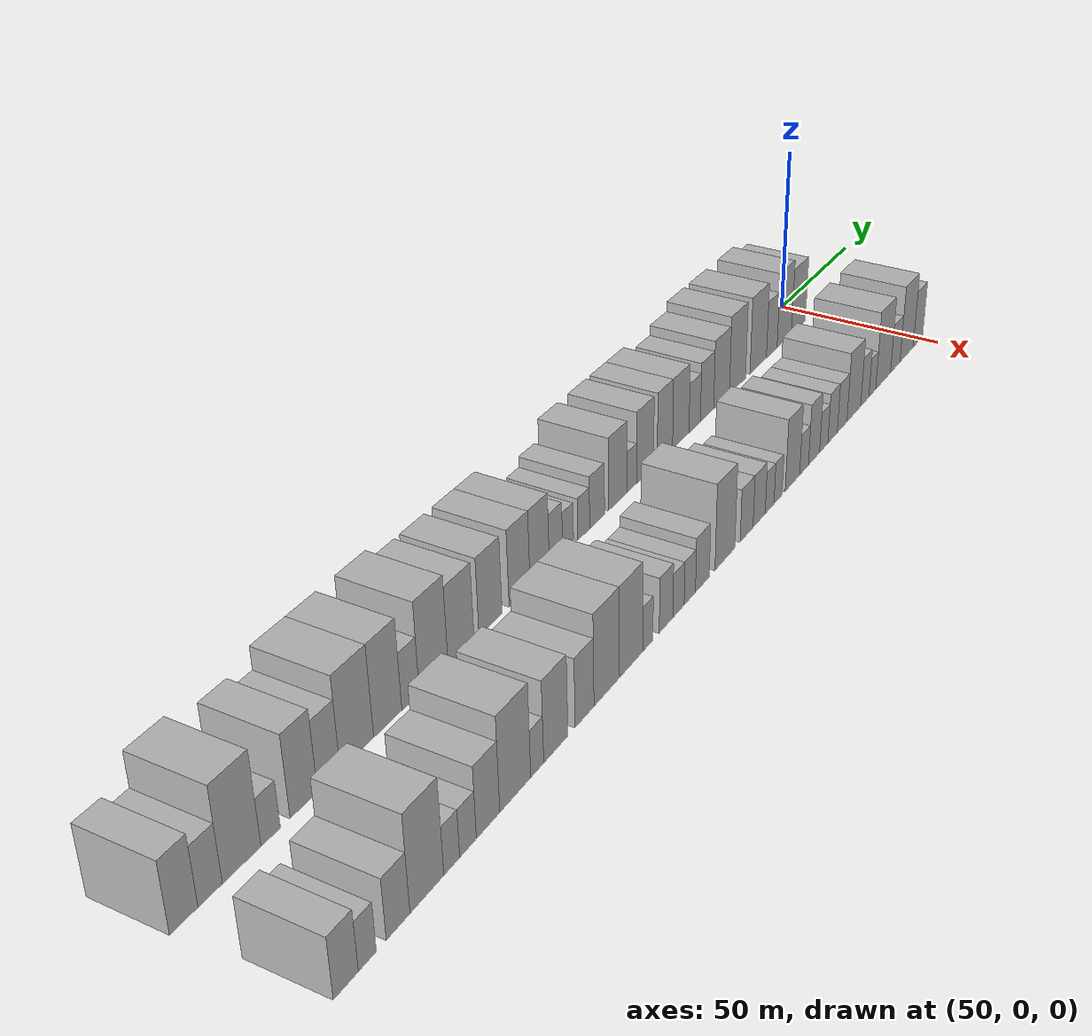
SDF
<sdf version="1.6">
 <world name="default">
  <model name="building_1">
   <static>1</static>
   <pose>50.0000 -286.1215 0 0.000000 0.000000 0.000000</pose>
   <link name="link">
    <pose>0 0 9.00 0 0 0</pose>
    <collision name="collision"><geometry><box><size>20.0000 7.7570 18.0000</size></box></geometry></collision>
    <visual name="visual">
     <cast_shadows>0</cast_shadows>
     <geometry><box><size>20.0000 7.7570 18.0000</size></box></geometry>
     <material>
      <script>
       <uri>model://HANNAS_wall/materials/scripts</uri>
       <uri>model://HANNAS_wall/materials/textures</uri>
       <name>vrc/HANNAS_wall</name>
      </script>
     </material>
    </visual>
   </link>
  </model>
  <model name="building_2">
   <static>1</static>
   <pose>50.0000 -278.8270 0 0.000000 0.000000 0.000000</pose>
   <link name="link">
    <pose>0 0 7.50 0 0 0</pose>
    <collision name="collision"><geometry><box><size>20.0000 6.8320 15.0000</size></box></geometry></collision>
    <visual name="visual">
     <cast_shadows>0</cast_shadows>
     <geometry><box><size>20.0000 6.8320 15.0000</size></box></geometry>
     <material>
      <script>
       <uri>model://HANNAS_wall/materials/scripts</uri>
       <uri>model://HANNAS_wall/materials/textures</uri>
       <name>vrc/HANNAS_wall</name>
      </script>
     </material>
    </visual>
   </link>
  </model>
  <model name="building_3">
   <static>1</static>
   <pose>50.0000 -269.7757 0 0.000000 0.000000 0.000000</pose>
   <link name="link">
    <pose>0 0 12.00 0 0 0</pose>
    <collision name="collision"><geometry><box><size>20.0000 11.2707 24.0000</size></box></geometry></collision>
    <visual name="visual">
     <cast_shadows>0</cast_shadows>
     <geometry><box><size>20.0000 11.2707 24.0000</size></box></geometry>
     <material>
      <script>
       <uri>model://HANNAS_wall/materials/scripts</uri>
       <uri>model://HANNAS_wall/materials/textures</uri>
       <name>vrc/HANNAS_wall</name>
      </script>
     </material>
    </visual>
   </link>
  </model>
  <model name="building_4">
   <static>1</static>
   <pose>50.0000 -261.1893 0 0.000000 0.000000 0.000000</pose>
   <link name="link">
    <pose>0 0 6.00 0 0 0</pose>
    <collision name="collision"><geometry><box><size>20.0000 5.9021 12.0000</size></box></geometry></collision>
    <visual name="visual">
     <cast_shadows>0</cast_shadows>
     <geometry><box><size>20.0000 5.9021 12.0000</size></box></geometry>
     <material>
      <script>
       <uri>model://HANNAS_wall/materials/scripts</uri>
       <uri>model://HANNAS_wall/materials/textures</uri>
       <name>vrc/HANNAS_wall</name>
      </script>
     </material>
    </visual>
   </link>
  </model>
  <model name="building_5">
   <static>1</static>
   <pose>50.0000 -250.8855 0 0.000000 0.000000 0.000000</pose>
   <link name="link">
    <pose>0 0 10.50 0 0 0</pose>
    <collision name="collision"><geometry><box><size>20.0000 8.7054 21.0000</size></box></geometry></collision>
    <visual name="visual">
     <cast_shadows>0</cast_shadows>
     <geometry><box><size>20.0000 8.7054 21.0000</size></box></geometry>
     <material>
      <script>
       <uri>model://HANNAS_wall/materials/scripts</uri>
       <uri>model://HANNAS_wall/materials/textures</uri>
       <name>vrc/HANNAS_wall</name>
      </script>
     </material>
    </visual>
   </link>
  </model>
  <model name="building_6">
   <static>1</static>
   <pose>50.0000 -242.7980 0 0.000000 0.000000 0.000000</pose>
   <link name="link">
    <pose>0 0 9.00 0 0 0</pose>
    <collision name="collision"><geometry><box><size>20.0000 7.4695 18.0000</size></box></geometry></collision>
    <visual name="visual">
     <cast_shadows>0</cast_shadows>
     <geometry><box><size>20.0000 7.4695 18.0000</size></box></geometry>
     <material>
      <script>
       <uri>model://HANNAS_wall/materials/scripts</uri>
       <uri>model://HANNAS_wall/materials/textures</uri>
       <name>vrc/HANNAS_wall</name>
      </script>
     </material>
    </visual>
   </link>
  </model>
  <model name="building_7">
   <static>1</static>
   <pose>50.0000 -233.3170 0 0.000000 0.000000 0.000000</pose>
   <link name="link">
    <pose>0 0 12.00 0 0 0</pose>
    <collision name="collision"><geometry><box><size>20.0000 11.4925 24.0000</size></box></geometry></collision>
    <visual name="visual">
     <cast_shadows>0</cast_shadows>
     <geometry><box><size>20.0000 11.4925 24.0000</size></box></geometry>
     <material>
      <script>
       <uri>model://HANNAS_wall/materials/scripts</uri>
       <uri>model://HANNAS_wall/materials/textures</uri>
       <name>vrc/HANNAS_wall</name>
      </script>
     </material>
    </visual>
   </link>
  </model>
  <model name="building_8">
   <static>1</static>
   <pose>50.0000 -222.5030 0 0.000000 0.000000 0.000000</pose>
   <link name="link">
    <pose>0 0 12.00 0 0 0</pose>
    <collision name="collision"><geometry><box><size>20.0000 10.1356 24.0000</size></box></geometry></collision>
    <visual name="visual">
     <cast_shadows>0</cast_shadows>
     <geometry><box><size>20.0000 10.1356 24.0000</size></box></geometry>
     <material>
      <script>
       <uri>model://HANNAS_wall/materials/scripts</uri>
       <uri>model://HANNAS_wall/materials/textures</uri>
       <name>vrc/HANNAS_wall</name>
      </script>
     </material>
    </visual>
   </link>
  </model>
  <model name="building_9">
   <static>1</static>
   <pose>50.0000 -214.2020 0 0.000000 0.000000 0.000000</pose>
   <link name="link">
    <pose>0 0 7.50 0 0 0</pose>
    <collision name="collision"><geometry><box><size>20.0000 6.4662 15.0000</size></box></geometry></collision>
    <visual name="visual">
     <cast_shadows>0</cast_shadows>
     <geometry><box><size>20.0000 6.4662 15.0000</size></box></geometry>
     <material>
      <script>
       <uri>model://HANNAS_wall/materials/scripts</uri>
       <uri>model://HANNAS_wall/materials/textures</uri>
       <name>vrc/HANNAS_wall</name>
      </script>
     </material>
    </visual>
   </link>
  </model>
  <model name="building_10">
   <static>1</static>
   <pose>50.0000 -205.4233 0 0.000000 0.000000 0.000000</pose>
   <link name="link">
    <pose>0 0 12.00 0 0 0</pose>
    <collision name="collision"><geometry><box><size>20.0000 11.0913 24.0000</size></box></geometry></collision>
    <visual name="visual">
     <cast_shadows>0</cast_shadows>
     <geometry><box><size>20.0000 11.0913 24.0000</size></box></geometry>
     <material>
      <script>
       <uri>model://HANNAS_wall/materials/scripts</uri>
       <uri>model://HANNAS_wall/materials/textures</uri>
       <name>vrc/HANNAS_wall</name>
      </script>
     </material>
    </visual>
   </link>
  </model>
  <model name="building_11">
   <static>1</static>
   <pose>50.0000 -194.6759 0 0.000000 0.000000 0.000000</pose>
   <link name="link">
    <pose>0 0 10.50 0 0 0</pose>
    <collision name="collision"><geometry><box><size>20.0000 10.4035 21.0000</size></box></geometry></collision>
    <visual name="visual">
     <cast_shadows>0</cast_shadows>
     <geometry><box><size>20.0000 10.4035 21.0000</size></box></geometry>
     <material>
      <script>
       <uri>model://HANNAS_wall/materials/scripts</uri>
       <uri>model://HANNAS_wall/materials/textures</uri>
       <name>vrc/HANNAS_wall</name>
      </script>
     </material>
    </visual>
   </link>
  </model>
  <model name="building_12">
   <static>1</static>
   <pose>50.0000 -182.6092 0 0.000000 0.000000 0.000000</pose>
   <link name="link">
    <pose>0 0 10.50 0 0 0</pose>
    <collision name="collision"><geometry><box><size>20.0000 9.7299 21.0000</size></box></geometry></collision>
    <visual name="visual">
     <cast_shadows>0</cast_shadows>
     <geometry><box><size>20.0000 9.7299 21.0000</size></box></geometry>
     <material>
      <script>
       <uri>model://HANNAS_wall/materials/scripts</uri>
       <uri>model://HANNAS_wall/materials/textures</uri>
       <name>vrc/HANNAS_wall</name>
      </script>
     </material>
    </visual>
   </link>
  </model>
  <model name="building_13">
   <static>1</static>
   <pose>50.0000 -170.1240 0 0.000000 0.000000 0.000000</pose>
   <link name="link">
    <pose>0 0 10.50 0 0 0</pose>
    <collision name="collision"><geometry><box><size>20.0000 9.2405 21.0000</size></box></geometry></collision>
    <visual name="visual">
     <cast_shadows>0</cast_shadows>
     <geometry><box><size>20.0000 9.2405 21.0000</size></box></geometry>
     <material>
      <script>
       <uri>model://HANNAS_wall/materials/scripts</uri>
       <uri>model://HANNAS_wall/materials/textures</uri>
       <name>vrc/HANNAS_wall</name>
      </script>
     </material>
    </visual>
   </link>
  </model>
  <model name="building_14">
   <static>1</static>
   <pose>50.0000 -161.1200 0 0.000000 0.000000 0.000000</pose>
   <link name="link">
    <pose>0 0 10.50 0 0 0</pose>
    <collision name="collision"><geometry><box><size>20.0000 8.7677 21.0000</size></box></geometry></collision>
    <visual name="visual">
     <cast_shadows>0</cast_shadows>
     <geometry><box><size>20.0000 8.7677 21.0000</size></box></geometry>
     <material>
      <script>
       <uri>model://HANNAS_wall/materials/scripts</uri>
       <uri>model://HANNAS_wall/materials/textures</uri>
       <name>vrc/HANNAS_wall</name>
      </script>
     </material>
    </visual>
   </link>
  </model>
  <model name="building_15">
   <static>1</static>
   <pose>50.0000 -153.6096 0 0.000000 0.000000 0.000000</pose>
   <link name="link">
    <pose>0 0 7.50 0 0 0</pose>
    <collision name="collision"><geometry><box><size>20.0000 6.2531 15.0000</size></box></geometry></collision>
    <visual name="visual">
     <cast_shadows>0</cast_shadows>
     <geometry><box><size>20.0000 6.2531 15.0000</size></box></geometry>
     <material>
      <script>
       <uri>model://HANNAS_wall/materials/scripts</uri>
       <uri>model://HANNAS_wall/materials/textures</uri>
       <name>vrc/HANNAS_wall</name>
      </script>
     </material>
    </visual>
   </link>
  </model>
  <model name="building_16">
   <static>1</static>
   <pose>50.0000 -147.8649 0 0.000000 0.000000 0.000000</pose>
   <link name="link">
    <pose>0 0 6.00 0 0 0</pose>
    <collision name="collision"><geometry><box><size>20.0000 5.2362 12.0000</size></box></geometry></collision>
    <visual name="visual">
     <cast_shadows>0</cast_shadows>
     <geometry><box><size>20.0000 5.2362 12.0000</size></box></geometry>
     <material>
      <script>
       <uri>model://HANNAS_wall/materials/scripts</uri>
       <uri>model://HANNAS_wall/materials/textures</uri>
       <name>vrc/HANNAS_wall</name>
      </script>
     </material>
    </visual>
   </link>
  </model>
  <model name="building_17">
   <static>1</static>
   <pose>50.0000 -140.3186 0 0.000000 0.000000 0.000000</pose>
   <link name="link">
    <pose>0 0 6.00 0 0 0</pose>
    <collision name="collision"><geometry><box><size>20.0000 5.8565 12.0000</size></box></geometry></collision>
    <visual name="visual">
     <cast_shadows>0</cast_shadows>
     <geometry><box><size>20.0000 5.8565 12.0000</size></box></geometry>
     <material>
      <script>
       <uri>model://HANNAS_wall/materials/scripts</uri>
       <uri>model://HANNAS_wall/materials/textures</uri>
       <name>vrc/HANNAS_wall</name>
      </script>
     </material>
    </visual>
   </link>
  </model>
  <model name="building_18">
   <static>1</static>
   <pose>50.0000 -133.6566 0 0.000000 0.000000 0.000000</pose>
   <link name="link">
    <pose>0 0 7.50 0 0 0</pose>
    <collision name="collision"><geometry><box><size>20.0000 7.4675 15.0000</size></box></geometry></collision>
    <visual name="visual">
     <cast_shadows>0</cast_shadows>
     <geometry><box><size>20.0000 7.4675 15.0000</size></box></geometry>
     <material>
      <script>
       <uri>model://HANNAS_wall/materials/scripts</uri>
       <uri>model://HANNAS_wall/materials/textures</uri>
       <name>vrc/HANNAS_wall</name>
      </script>
     </material>
    </visual>
   </link>
  </model>
  <model name="building_19">
   <static>1</static>
   <pose>50.0000 -123.0752 0 0.000000 0.000000 0.000000</pose>
   <link name="link">
    <pose>0 0 10.50 0 0 0</pose>
    <collision name="collision"><geometry><box><size>20.0000 9.6954 21.0000</size></box></geometry></collision>
    <visual name="visual">
     <cast_shadows>0</cast_shadows>
     <geometry><box><size>20.0000 9.6954 21.0000</size></box></geometry>
     <material>
      <script>
       <uri>model://HANNAS_wall/materials/scripts</uri>
       <uri>model://HANNAS_wall/materials/textures</uri>
       <name>vrc/HANNAS_wall</name>
      </script>
     </material>
    </visual>
   </link>
  </model>
  <model name="building_20">
   <static>1</static>
   <pose>50.0000 -115.6815 0 0.000000 0.000000 0.000000</pose>
   <link name="link">
    <pose>0 0 6.00 0 0 0</pose>
    <collision name="collision"><geometry><box><size>20.0000 5.0921 12.0000</size></box></geometry></collision>
    <visual name="visual">
     <cast_shadows>0</cast_shadows>
     <geometry><box><size>20.0000 5.0921 12.0000</size></box></geometry>
     <material>
      <script>
       <uri>model://HANNAS_wall/materials/scripts</uri>
       <uri>model://HANNAS_wall/materials/textures</uri>
       <name>vrc/HANNAS_wall</name>
      </script>
     </material>
    </visual>
   </link>
  </model>
  <model name="building_21">
   <static>1</static>
   <pose>50.0000 -108.4756 0 0.000000 0.000000 0.000000</pose>
   <link name="link">
    <pose>0 0 10.50 0 0 0</pose>
    <collision name="collision"><geometry><box><size>20.0000 9.3197 21.0000</size></box></geometry></collision>
    <visual name="visual">
     <cast_shadows>0</cast_shadows>
     <geometry><box><size>20.0000 9.3197 21.0000</size></box></geometry>
     <material>
      <script>
       <uri>model://HANNAS_wall/materials/scripts</uri>
       <uri>model://HANNAS_wall/materials/textures</uri>
       <name>vrc/HANNAS_wall</name>
      </script>
     </material>
    </visual>
   </link>
  </model>
  <model name="building_22">
   <static>1</static>
   <pose>50.0000 -97.4793 0 0.000000 0.000000 0.000000</pose>
   <link name="link">
    <pose>0 0 10.50 0 0 0</pose>
    <collision name="collision"><geometry><box><size>20.0000 8.6728 21.0000</size></box></geometry></collision>
    <visual name="visual">
     <cast_shadows>0</cast_shadows>
     <geometry><box><size>20.0000 8.6728 21.0000</size></box></geometry>
     <material>
      <script>
       <uri>model://HANNAS_wall/materials/scripts</uri>
       <uri>model://HANNAS_wall/materials/textures</uri>
       <name>vrc/HANNAS_wall</name>
      </script>
     </material>
    </visual>
   </link>
  </model>
  <model name="building_23">
   <static>1</static>
   <pose>50.0000 -88.3276 0 0.000000 0.000000 0.000000</pose>
   <link name="link">
    <pose>0 0 10.50 0 0 0</pose>
    <collision name="collision"><geometry><box><size>20.0000 9.6306 21.0000</size></box></geometry></collision>
    <visual name="visual">
     <cast_shadows>0</cast_shadows>
     <geometry><box><size>20.0000 9.6306 21.0000</size></box></geometry>
     <material>
      <script>
       <uri>model://HANNAS_wall/materials/scripts</uri>
       <uri>model://HANNAS_wall/materials/textures</uri>
       <name>vrc/HANNAS_wall</name>
      </script>
     </material>
    </visual>
   </link>
  </model>
  <model name="building_24">
   <static>1</static>
   <pose>50.0000 -80.1042 0 0.000000 0.000000 0.000000</pose>
   <link name="link">
    <pose>0 0 7.50 0 0 0</pose>
    <collision name="collision"><geometry><box><size>20.0000 6.8162 15.0000</size></box></geometry></collision>
    <visual name="visual">
     <cast_shadows>0</cast_shadows>
     <geometry><box><size>20.0000 6.8162 15.0000</size></box></geometry>
     <material>
      <script>
       <uri>model://HANNAS_wall/materials/scripts</uri>
       <uri>model://HANNAS_wall/materials/textures</uri>
       <name>vrc/HANNAS_wall</name>
      </script>
     </material>
    </visual>
   </link>
  </model>
  <model name="building_25">
   <static>1</static>
   <pose>50.0000 -72.6265 0 0.000000 0.000000 0.000000</pose>
   <link name="link">
    <pose>0 0 9.00 0 0 0</pose>
    <collision name="collision"><geometry><box><size>20.0000 8.1390 18.0000</size></box></geometry></collision>
    <visual name="visual">
     <cast_shadows>0</cast_shadows>
     <geometry><box><size>20.0000 8.1390 18.0000</size></box></geometry>
     <material>
      <script>
       <uri>model://HANNAS_wall/materials/scripts</uri>
       <uri>model://HANNAS_wall/materials/textures</uri>
       <name>vrc/HANNAS_wall</name>
      </script>
     </material>
    </visual>
   </link>
  </model>
  <model name="building_26">
   <static>1</static>
   <pose>50.0000 -63.5773 0 0.000000 0.000000 0.000000</pose>
   <link name="link">
    <pose>0 0 10.50 0 0 0</pose>
    <collision name="collision"><geometry><box><size>20.0000 9.9593 21.0000</size></box></geometry></collision>
    <visual name="visual">
     <cast_shadows>0</cast_shadows>
     <geometry><box><size>20.0000 9.9593 21.0000</size></box></geometry>
     <material>
      <script>
       <uri>model://HANNAS_wall/materials/scripts</uri>
       <uri>model://HANNAS_wall/materials/textures</uri>
       <name>vrc/HANNAS_wall</name>
      </script>
     </material>
    </visual>
   </link>
  </model>
  <model name="building_27">
   <static>1</static>
   <pose>50.0000 -53.3399 0 0.000000 0.000000 0.000000</pose>
   <link name="link">
    <pose>0 0 12.00 0 0 0</pose>
    <collision name="collision"><geometry><box><size>20.0000 10.5155 24.0000</size></box></geometry></collision>
    <visual name="visual">
     <cast_shadows>0</cast_shadows>
     <geometry><box><size>20.0000 10.5155 24.0000</size></box></geometry>
     <material>
      <script>
       <uri>model://HANNAS_wall/materials/scripts</uri>
       <uri>model://HANNAS_wall/materials/textures</uri>
       <name>vrc/HANNAS_wall</name>
      </script>
     </material>
    </visual>
   </link>
  </model>
  <model name="building_28">
   <static>1</static>
   <pose>50.0000 -39.4996 0 0.000000 0.000000 0.000000</pose>
   <link name="link">
    <pose>0 0 12.00 0 0 0</pose>
    <collision name="collision"><geometry><box><size>20.0000 11.1651 24.0000</size></box></geometry></collision>
    <visual name="visual">
     <cast_shadows>0</cast_shadows>
     <geometry><box><size>20.0000 11.1651 24.0000</size></box></geometry>
     <material>
      <script>
       <uri>model://HANNAS_wall/materials/scripts</uri>
       <uri>model://HANNAS_wall/materials/textures</uri>
       <name>vrc/HANNAS_wall</name>
      </script>
     </material>
    </visual>
   </link>
  </model>
  <model name="building_29">
   <static>1</static>
   <pose>50.0000 -30.1853 0 0.000000 0.000000 0.000000</pose>
   <link name="link">
    <pose>0 0 9.00 0 0 0</pose>
    <collision name="collision"><geometry><box><size>20.0000 7.4636 18.0000</size></box></geometry></collision>
    <visual name="visual">
     <cast_shadows>0</cast_shadows>
     <geometry><box><size>20.0000 7.4636 18.0000</size></box></geometry>
     <material>
      <script>
       <uri>model://HANNAS_wall/materials/scripts</uri>
       <uri>model://HANNAS_wall/materials/textures</uri>
       <name>vrc/HANNAS_wall</name>
      </script>
     </material>
    </visual>
   </link>
  </model>
  <model name="building_30">
   <static>1</static>
   <pose>50.0000 -21.2771 0 0.000000 0.000000 0.000000</pose>
   <link name="link">
    <pose>0 0 12.00 0 0 0</pose>
    <collision name="collision"><geometry><box><size>20.0000 10.3528 24.0000</size></box></geometry></collision>
    <visual name="visual">
     <cast_shadows>0</cast_shadows>
     <geometry><box><size>20.0000 10.3528 24.0000</size></box></geometry>
     <material>
      <script>
       <uri>model://HANNAS_wall/materials/scripts</uri>
       <uri>model://HANNAS_wall/materials/textures</uri>
       <name>vrc/HANNAS_wall</name>
      </script>
     </material>
    </visual>
   </link>
  </model>
  <model name="building_31">
   <static>1</static>
   <pose>50.0000 -10.9380 0 0.000000 0.000000 0.000000</pose>
   <link name="link">
    <pose>0 0 10.50 0 0 0</pose>
    <collision name="collision"><geometry><box><size>20.0000 10.3253 21.0000</size></box></geometry></collision>
    <visual name="visual">
     <cast_shadows>0</cast_shadows>
     <geometry><box><size>20.0000 10.3253 21.0000</size></box></geometry>
     <material>
      <script>
       <uri>model://HANNAS_wall/materials/scripts</uri>
       <uri>model://HANNAS_wall/materials/textures</uri>
       <name>vrc/HANNAS_wall</name>
      </script>
     </material>
    </visual>
   </link>
  </model>
  <model name="building_66">
   <static>1</static>
   <pose>85.0000 -284.3503 0 0.000000 0.000000 0.000000</pose>
   <link name="link">
    <pose>0 0 7.50 0 0 0</pose>
    <collision name="collision"><geometry><box><size>20.0000 7.2995 15.0000</size></box></geometry></collision>
    <visual name="visual">
     <cast_shadows>0</cast_shadows>
     <geometry><box><size>20.0000 7.2995 15.0000</size></box></geometry>
     <material>
      <script>
       <uri>model://HANNAS_wall/materials/scripts</uri>
       <uri>model://HANNAS_wall/materials/textures</uri>
       <name>vrc/HANNAS_wall</name>
      </script>
     </material>
    </visual>
   </link>
  </model>
  <model name="building_67">
   <static>1</static>
   <pose>85.0000 -278.0085 0 0.000000 0.000000 0.000000</pose>
   <link name="link">
    <pose>0 0 6.00 0 0 0</pose>
    <collision name="collision"><geometry><box><size>20.0000 5.3840 12.0000</size></box></geometry></collision>
    <visual name="visual">
     <cast_shadows>0</cast_shadows>
     <geometry><box><size>20.0000 5.3840 12.0000</size></box></geometry>
     <material>
      <script>
       <uri>model://HANNAS_wall/materials/scripts</uri>
       <uri>model://HANNAS_wall/materials/textures</uri>
       <name>vrc/HANNAS_wall</name>
      </script>
     </material>
    </visual>
   </link>
  </model>
  <model name="building_68">
   <static>1</static>
   <pose>85.0000 -268.5998 0 0.000000 0.000000 0.000000</pose>
   <link name="link">
    <pose>0 0 7.50 0 0 0</pose>
    <collision name="collision"><geometry><box><size>20.0000 7.4336 15.0000</size></box></geometry></collision>
    <visual name="visual">
     <cast_shadows>0</cast_shadows>
     <geometry><box><size>20.0000 7.4336 15.0000</size></box></geometry>
     <material>
      <script>
       <uri>model://HANNAS_wall/materials/scripts</uri>
       <uri>model://HANNAS_wall/materials/textures</uri>
       <name>vrc/HANNAS_wall</name>
      </script>
     </material>
    </visual>
   </link>
  </model>
  <model name="building_69">
   <static>1</static>
   <pose>85.0000 -259.3534 0 0.000000 0.000000 0.000000</pose>
   <link name="link">
    <pose>0 0 12.00 0 0 0</pose>
    <collision name="collision"><geometry><box><size>20.0000 11.0592 24.0000</size></box></geometry></collision>
    <visual name="visual">
     <cast_shadows>0</cast_shadows>
     <geometry><box><size>20.0000 11.0592 24.0000</size></box></geometry>
     <material>
      <script>
       <uri>model://HANNAS_wall/materials/scripts</uri>
       <uri>model://HANNAS_wall/materials/textures</uri>
       <name>vrc/HANNAS_wall</name>
      </script>
     </material>
    </visual>
   </link>
  </model>
  <model name="building_70">
   <static>1</static>
   <pose>85.0000 -251.1274 0 0.000000 0.000000 0.000000</pose>
   <link name="link">
    <pose>0 0 6.00 0 0 0</pose>
    <collision name="collision"><geometry><box><size>20.0000 5.3927 12.0000</size></box></geometry></collision>
    <visual name="visual">
     <cast_shadows>0</cast_shadows>
     <geometry><box><size>20.0000 5.3927 12.0000</size></box></geometry>
     <material>
      <script>
       <uri>model://HANNAS_wall/materials/scripts</uri>
       <uri>model://HANNAS_wall/materials/textures</uri>
       <name>vrc/HANNAS_wall</name>
      </script>
     </material>
    </visual>
   </link>
  </model>
  <model name="building_71">
   <static>1</static>
   <pose>85.0000 -245.5256 0 0.000000 0.000000 0.000000</pose>
   <link name="link">
    <pose>0 0 6.00 0 0 0</pose>
    <collision name="collision"><geometry><box><size>20.0000 5.8109 12.0000</size></box></geometry></collision>
    <visual name="visual">
     <cast_shadows>0</cast_shadows>
     <geometry><box><size>20.0000 5.8109 12.0000</size></box></geometry>
     <material>
      <script>
       <uri>model://HANNAS_wall/materials/scripts</uri>
       <uri>model://HANNAS_wall/materials/textures</uri>
       <name>vrc/HANNAS_wall</name>
      </script>
     </material>
    </visual>
   </link>
  </model>
  <model name="building_72">
   <static>1</static>
   <pose>85.0000 -238.4055 0 0.000000 0.000000 0.000000</pose>
   <link name="link">
    <pose>0 0 9.00 0 0 0</pose>
    <collision name="collision"><geometry><box><size>20.0000 8.4294 18.0000</size></box></geometry></collision>
    <visual name="visual">
     <cast_shadows>0</cast_shadows>
     <geometry><box><size>20.0000 8.4294 18.0000</size></box></geometry>
     <material>
      <script>
       <uri>model://HANNAS_wall/materials/scripts</uri>
       <uri>model://HANNAS_wall/materials/textures</uri>
       <name>vrc/HANNAS_wall</name>
      </script>
     </material>
    </visual>
   </link>
  </model>
  <model name="building_73">
   <static>1</static>
   <pose>85.0000 -228.3790 0 0.000000 0.000000 0.000000</pose>
   <link name="link">
    <pose>0 0 12.00 0 0 0</pose>
    <collision name="collision"><geometry><box><size>20.0000 11.6236 24.0000</size></box></geometry></collision>
    <visual name="visual">
     <cast_shadows>0</cast_shadows>
     <geometry><box><size>20.0000 11.6236 24.0000</size></box></geometry>
     <material>
      <script>
       <uri>model://HANNAS_wall/materials/scripts</uri>
       <uri>model://HANNAS_wall/materials/textures</uri>
       <name>vrc/HANNAS_wall</name>
      </script>
     </material>
    </visual>
   </link>
  </model>
  <model name="building_74">
   <static>1</static>
   <pose>85.0000 -220.0462 0 0.000000 0.000000 0.000000</pose>
   <link name="link">
    <pose>0 0 6.00 0 0 0</pose>
    <collision name="collision"><geometry><box><size>20.0000 5.0420 12.0000</size></box></geometry></collision>
    <visual name="visual">
     <cast_shadows>0</cast_shadows>
     <geometry><box><size>20.0000 5.0420 12.0000</size></box></geometry>
     <material>
      <script>
       <uri>model://HANNAS_wall/materials/scripts</uri>
       <uri>model://HANNAS_wall/materials/textures</uri>
       <name>vrc/HANNAS_wall</name>
      </script>
     </material>
    </visual>
   </link>
  </model>
  <model name="building_75">
   <static>1</static>
   <pose>85.0000 -212.6602 0 0.000000 0.000000 0.000000</pose>
   <link name="link">
    <pose>0 0 10.50 0 0 0</pose>
    <collision name="collision"><geometry><box><size>20.0000 9.7299 21.0000</size></box></geometry></collision>
    <visual name="visual">
     <cast_shadows>0</cast_shadows>
     <geometry><box><size>20.0000 9.7299 21.0000</size></box></geometry>
     <material>
      <script>
       <uri>model://HANNAS_wall/materials/scripts</uri>
       <uri>model://HANNAS_wall/materials/textures</uri>
       <name>vrc/HANNAS_wall</name>
      </script>
     </material>
    </visual>
   </link>
  </model>
  <model name="building_76">
   <static>1</static>
   <pose>85.0000 -200.8288 0 0.000000 0.000000 0.000000</pose>
   <link name="link">
    <pose>0 0 9.00 0 0 0</pose>
    <collision name="collision"><geometry><box><size>20.0000 7.9328 18.0000</size></box></geometry></collision>
    <visual name="visual">
     <cast_shadows>0</cast_shadows>
     <geometry><box><size>20.0000 7.9328 18.0000</size></box></geometry>
     <material>
      <script>
       <uri>model://HANNAS_wall/materials/scripts</uri>
       <uri>model://HANNAS_wall/materials/textures</uri>
       <name>vrc/HANNAS_wall</name>
      </script>
     </material>
    </visual>
   </link>
  </model>
  <model name="building_77">
   <static>1</static>
   <pose>85.0000 -191.2607 0 0.000000 0.000000 0.000000</pose>
   <link name="link">
    <pose>0 0 12.00 0 0 0</pose>
    <collision name="collision"><geometry><box><size>20.0000 11.2034 24.0000</size></box></geometry></collision>
    <visual name="visual">
     <cast_shadows>0</cast_shadows>
     <geometry><box><size>20.0000 11.2034 24.0000</size></box></geometry>
     <material>
      <script>
       <uri>model://HANNAS_wall/materials/scripts</uri>
       <uri>model://HANNAS_wall/materials/textures</uri>
       <name>vrc/HANNAS_wall</name>
      </script>
     </material>
    </visual>
   </link>
  </model>
  <model name="building_78">
   <static>1</static>
   <pose>85.0000 -180.3435 0 0.000000 0.000000 0.000000</pose>
   <link name="link">
    <pose>0 0 12.00 0 0 0</pose>
    <collision name="collision"><geometry><box><size>20.0000 10.6310 24.0000</size></box></geometry></collision>
    <visual name="visual">
     <cast_shadows>0</cast_shadows>
     <geometry><box><size>20.0000 10.6310 24.0000</size></box></geometry>
     <material>
      <script>
       <uri>model://HANNAS_wall/materials/scripts</uri>
       <uri>model://HANNAS_wall/materials/textures</uri>
       <name>vrc/HANNAS_wall</name>
      </script>
     </material>
    </visual>
   </link>
  </model>
  <model name="building_79">
   <static>1</static>
   <pose>85.0000 -172.6079 0 0.000000 0.000000 0.000000</pose>
   <link name="link">
    <pose>0 0 6.00 0 0 0</pose>
    <collision name="collision"><geometry><box><size>20.0000 4.8402 12.0000</size></box></geometry></collision>
    <visual name="visual">
     <cast_shadows>0</cast_shadows>
     <geometry><box><size>20.0000 4.8402 12.0000</size></box></geometry>
     <material>
      <script>
       <uri>model://HANNAS_wall/materials/scripts</uri>
       <uri>model://HANNAS_wall/materials/textures</uri>
       <name>vrc/HANNAS_wall</name>
      </script>
     </material>
    </visual>
   </link>
  </model>
  <model name="building_80">
   <static>1</static>
   <pose>85.0000 -163.8576 0 0.000000 0.000000 0.000000</pose>
   <link name="link">
    <pose>0 0 7.50 0 0 0</pose>
    <collision name="collision"><geometry><box><size>20.0000 6.6606 15.0000</size></box></geometry></collision>
    <visual name="visual">
     <cast_shadows>0</cast_shadows>
     <geometry><box><size>20.0000 6.6606 15.0000</size></box></geometry>
     <material>
      <script>
       <uri>model://HANNAS_wall/materials/scripts</uri>
       <uri>model://HANNAS_wall/materials/textures</uri>
       <name>vrc/HANNAS_wall</name>
      </script>
     </material>
    </visual>
   </link>
  </model>
  <model name="building_81">
   <static>1</static>
   <pose>85.0000 -157.7052 0 0.000000 0.000000 0.000000</pose>
   <link name="link">
    <pose>0 0 6.00 0 0 0</pose>
    <collision name="collision"><geometry><box><size>20.0000 5.6441 12.0000</size></box></geometry></collision>
    <visual name="visual">
     <cast_shadows>0</cast_shadows>
     <geometry><box><size>20.0000 5.6441 12.0000</size></box></geometry>
     <material>
      <script>
       <uri>model://HANNAS_wall/materials/scripts</uri>
       <uri>model://HANNAS_wall/materials/textures</uri>
       <name>vrc/HANNAS_wall</name>
      </script>
     </material>
    </visual>
   </link>
  </model>
  <model name="building_82">
   <static>1</static>
   <pose>85.0000 -151.9956 0 0.000000 0.000000 0.000000</pose>
   <link name="link">
    <pose>0 0 6.00 0 0 0</pose>
    <collision name="collision"><geometry><box><size>20.0000 5.7751 12.0000</size></box></geometry></collision>
    <visual name="visual">
     <cast_shadows>0</cast_shadows>
     <geometry><box><size>20.0000 5.7751 12.0000</size></box></geometry>
     <material>
      <script>
       <uri>model://HANNAS_wall/materials/scripts</uri>
       <uri>model://HANNAS_wall/materials/textures</uri>
       <name>vrc/HANNAS_wall</name>
      </script>
     </material>
    </visual>
   </link>
  </model>
  <model name="building_83">
   <static>1</static>
   <pose>85.0000 -145.4869 0 0.000000 0.000000 0.000000</pose>
   <link name="link">
    <pose>0 0 7.50 0 0 0</pose>
    <collision name="collision"><geometry><box><size>20.0000 7.2423 15.0000</size></box></geometry></collision>
    <visual name="visual">
     <cast_shadows>0</cast_shadows>
     <geometry><box><size>20.0000 7.2423 15.0000</size></box></geometry>
     <material>
      <script>
       <uri>model://HANNAS_wall/materials/scripts</uri>
       <uri>model://HANNAS_wall/materials/textures</uri>
       <name>vrc/HANNAS_wall</name>
      </script>
     </material>
    </visual>
   </link>
  </model>
  <model name="building_84">
   <static>1</static>
   <pose>85.0000 -133.4366 0 0.000000 0.000000 0.000000</pose>
   <link name="link">
    <pose>0 0 12.00 0 0 0</pose>
    <collision name="collision"><geometry><box><size>20.0000 10.8583 24.0000</size></box></geometry></collision>
    <visual name="visual">
     <cast_shadows>0</cast_shadows>
     <geometry><box><size>20.0000 10.8583 24.0000</size></box></geometry>
     <material>
      <script>
       <uri>model://HANNAS_wall/materials/scripts</uri>
       <uri>model://HANNAS_wall/materials/textures</uri>
       <name>vrc/HANNAS_wall</name>
      </script>
     </material>
    </visual>
   </link>
  </model>
  <model name="building_85">
   <static>1</static>
   <pose>85.0000 -121.3372 0 0.000000 0.000000 0.000000</pose>
   <link name="link">
    <pose>0 0 7.50 0 0 0</pose>
    <collision name="collision"><geometry><box><size>20.0000 7.3405 15.0000</size></box></geometry></collision>
    <visual name="visual">
     <cast_shadows>0</cast_shadows>
     <geometry><box><size>20.0000 7.3405 15.0000</size></box></geometry>
     <material>
      <script>
       <uri>model://HANNAS_wall/materials/scripts</uri>
       <uri>model://HANNAS_wall/materials/textures</uri>
       <name>vrc/HANNAS_wall</name>
      </script>
     </material>
    </visual>
   </link>
  </model>
  <model name="building_86">
   <static>1</static>
   <pose>85.0000 -114.1023 0 0.000000 0.000000 0.000000</pose>
   <link name="link">
    <pose>0 0 7.50 0 0 0</pose>
    <collision name="collision"><geometry><box><size>20.0000 7.1292 15.0000</size></box></geometry></collision>
    <visual name="visual">
     <cast_shadows>0</cast_shadows>
     <geometry><box><size>20.0000 7.1292 15.0000</size></box></geometry>
     <material>
      <script>
       <uri>model://HANNAS_wall/materials/scripts</uri>
       <uri>model://HANNAS_wall/materials/textures</uri>
       <name>vrc/HANNAS_wall</name>
      </script>
     </material>
    </visual>
   </link>
  </model>
  <model name="building_87">
   <static>1</static>
   <pose>85.0000 -107.8994 0 0.000000 0.000000 0.000000</pose>
   <link name="link">
    <pose>0 0 6.00 0 0 0</pose>
    <collision name="collision"><geometry><box><size>20.0000 5.2767 12.0000</size></box></geometry></collision>
    <visual name="visual">
     <cast_shadows>0</cast_shadows>
     <geometry><box><size>20.0000 5.2767 12.0000</size></box></geometry>
     <material>
      <script>
       <uri>model://HANNAS_wall/materials/scripts</uri>
       <uri>model://HANNAS_wall/materials/textures</uri>
       <name>vrc/HANNAS_wall</name>
      </script>
     </material>
    </visual>
   </link>
  </model>
  <model name="building_88">
   <static>1</static>
   <pose>85.0000 -102.8362 0 0.000000 0.000000 0.000000</pose>
   <link name="link">
    <pose>0 0 6.00 0 0 0</pose>
    <collision name="collision"><geometry><box><size>20.0000 4.8497 12.0000</size></box></geometry></collision>
    <visual name="visual">
     <cast_shadows>0</cast_shadows>
     <geometry><box><size>20.0000 4.8497 12.0000</size></box></geometry>
     <material>
      <script>
       <uri>model://HANNAS_wall/materials/scripts</uri>
       <uri>model://HANNAS_wall/materials/textures</uri>
       <name>vrc/HANNAS_wall</name>
      </script>
     </material>
    </visual>
   </link>
  </model>
  <model name="building_89">
   <static>1</static>
   <pose>85.0000 -93.9048 0 0.000000 0.000000 0.000000</pose>
   <link name="link">
    <pose>0 0 10.50 0 0 0</pose>
    <collision name="collision"><geometry><box><size>20.0000 9.0132 21.0000</size></box></geometry></collision>
    <visual name="visual">
     <cast_shadows>0</cast_shadows>
     <geometry><box><size>20.0000 9.0132 21.0000</size></box></geometry>
     <material>
      <script>
       <uri>model://HANNAS_wall/materials/scripts</uri>
       <uri>model://HANNAS_wall/materials/textures</uri>
       <name>vrc/HANNAS_wall</name>
      </script>
     </material>
    </visual>
   </link>
  </model>
  <model name="building_90">
   <static>1</static>
   <pose>85.0000 -86.5449 0 0.000000 0.000000 0.000000</pose>
   <link name="link">
    <pose>0 0 6.00 0 0 0</pose>
    <collision name="collision"><geometry><box><size>20.0000 5.7065 12.0000</size></box></geometry></collision>
    <visual name="visual">
     <cast_shadows>0</cast_shadows>
     <geometry><box><size>20.0000 5.7065 12.0000</size></box></geometry>
     <material>
      <script>
       <uri>model://HANNAS_wall/materials/scripts</uri>
       <uri>model://HANNAS_wall/materials/textures</uri>
       <name>vrc/HANNAS_wall</name>
      </script>
     </material>
    </visual>
   </link>
  </model>
  <model name="building_91">
   <static>1</static>
   <pose>85.0000 -80.0427 0 0.000000 0.000000 0.000000</pose>
   <link name="link">
    <pose>0 0 9.00 0 0 0</pose>
    <collision name="collision"><geometry><box><size>20.0000 7.2978 18.0000</size></box></geometry></collision>
    <visual name="visual">
     <cast_shadows>0</cast_shadows>
     <geometry><box><size>20.0000 7.2978 18.0000</size></box></geometry>
     <material>
      <script>
       <uri>model://HANNAS_wall/materials/scripts</uri>
       <uri>model://HANNAS_wall/materials/textures</uri>
       <name>vrc/HANNAS_wall</name>
      </script>
     </material>
    </visual>
   </link>
  </model>
  <model name="building_92">
   <static>1</static>
   <pose>85.0000 -73.6239 0 0.000000 0.000000 0.000000</pose>
   <link name="link">
    <pose>0 0 6.00 0 0 0</pose>
    <collision name="collision"><geometry><box><size>20.0000 5.5399 12.0000</size></box></geometry></collision>
    <visual name="visual">
     <cast_shadows>0</cast_shadows>
     <geometry><box><size>20.0000 5.5399 12.0000</size></box></geometry>
     <material>
      <script>
       <uri>model://HANNAS_wall/materials/scripts</uri>
       <uri>model://HANNAS_wall/materials/textures</uri>
       <name>vrc/HANNAS_wall</name>
      </script>
     </material>
    </visual>
   </link>
  </model>
  <model name="building_93">
   <static>1</static>
   <pose>85.0000 -67.6188 0 0.000000 0.000000 0.000000</pose>
   <link name="link">
    <pose>0 0 7.50 0 0 0</pose>
    <collision name="collision"><geometry><box><size>20.0000 6.4703 15.0000</size></box></geometry></collision>
    <visual name="visual">
     <cast_shadows>0</cast_shadows>
     <geometry><box><size>20.0000 6.4703 15.0000</size></box></geometry>
     <material>
      <script>
       <uri>model://HANNAS_wall/materials/scripts</uri>
       <uri>model://HANNAS_wall/materials/textures</uri>
       <name>vrc/HANNAS_wall</name>
      </script>
     </material>
    </visual>
   </link>
  </model>
  <model name="building_94">
   <static>1</static>
   <pose>85.0000 -61.0313 0 0.000000 0.000000 0.000000</pose>
   <link name="link">
    <pose>0 0 7.50 0 0 0</pose>
    <collision name="collision"><geometry><box><size>20.0000 6.7047 15.0000</size></box></geometry></collision>
    <visual name="visual">
     <cast_shadows>0</cast_shadows>
     <geometry><box><size>20.0000 6.7047 15.0000</size></box></geometry>
     <material>
      <script>
       <uri>model://HANNAS_wall/materials/scripts</uri>
       <uri>model://HANNAS_wall/materials/textures</uri>
       <name>vrc/HANNAS_wall</name>
      </script>
     </material>
    </visual>
   </link>
  </model>
  <model name="building_95">
   <static>1</static>
   <pose>85.0000 -52.7217 0 0.000000 0.000000 0.000000</pose>
   <link name="link">
    <pose>0 0 10.50 0 0 0</pose>
    <collision name="collision"><geometry><box><size>20.0000 9.9144 21.0000</size></box></geometry></collision>
    <visual name="visual">
     <cast_shadows>0</cast_shadows>
     <geometry><box><size>20.0000 9.9144 21.0000</size></box></geometry>
     <material>
      <script>
       <uri>model://HANNAS_wall/materials/scripts</uri>
       <uri>model://HANNAS_wall/materials/textures</uri>
       <name>vrc/HANNAS_wall</name>
      </script>
     </material>
    </visual>
   </link>
  </model>
  <model name="building_96">
   <static>1</static>
   <pose>85.0000 -44.7405 0 0.000000 0.000000 0.000000</pose>
   <link name="link">
    <pose>0 0 7.50 0 0 0</pose>
    <collision name="collision"><geometry><box><size>20.0000 6.0480 15.0000</size></box></geometry></collision>
    <visual name="visual">
     <cast_shadows>0</cast_shadows>
     <geometry><box><size>20.0000 6.0480 15.0000</size></box></geometry>
     <material>
      <script>
       <uri>model://HANNAS_wall/materials/scripts</uri>
       <uri>model://HANNAS_wall/materials/textures</uri>
       <name>vrc/HANNAS_wall</name>
      </script>
     </material>
    </visual>
   </link>
  </model>
  <model name="building_97">
   <static>1</static>
   <pose>85.0000 -39.1675 0 0.000000 0.000000 0.000000</pose>
   <link name="link">
    <pose>0 0 6.00 0 0 0</pose>
    <collision name="collision"><geometry><box><size>20.0000 5.0979 12.0000</size></box></geometry></collision>
    <visual name="visual">
     <cast_shadows>0</cast_shadows>
     <geometry><box><size>20.0000 5.0979 12.0000</size></box></geometry>
     <material>
      <script>
       <uri>model://HANNAS_wall/materials/scripts</uri>
       <uri>model://HANNAS_wall/materials/textures</uri>
       <name>vrc/HANNAS_wall</name>
      </script>
     </material>
    </visual>
   </link>
  </model>
  <model name="building_98">
   <static>1</static>
   <pose>85.0000 -30.9356 0 0.000000 0.000000 0.000000</pose>
   <link name="link">
    <pose>0 0 12.00 0 0 0</pose>
    <collision name="collision"><geometry><box><size>20.0000 11.3660 24.0000</size></box></geometry></collision>
    <visual name="visual">
     <cast_shadows>0</cast_shadows>
     <geometry><box><size>20.0000 11.3660 24.0000</size></box></geometry>
     <material>
      <script>
       <uri>model://HANNAS_wall/materials/scripts</uri>
       <uri>model://HANNAS_wall/materials/textures</uri>
       <name>vrc/HANNAS_wall</name>
      </script>
     </material>
    </visual>
   </link>
  </model>
  <model name="building_99">
   <static>1</static>
   <pose>85.0000 -21.5155 0 0.000000 0.000000 0.000000</pose>
   <link name="link">
    <pose>0 0 7.50 0 0 0</pose>
    <collision name="collision"><geometry><box><size>20.0000 7.4742 15.0000</size></box></geometry></collision>
    <visual name="visual">
     <cast_shadows>0</cast_shadows>
     <geometry><box><size>20.0000 7.4742 15.0000</size></box></geometry>
     <material>
      <script>
       <uri>model://HANNAS_wall/materials/scripts</uri>
       <uri>model://HANNAS_wall/materials/textures</uri>
       <name>vrc/HANNAS_wall</name>
      </script>
     </material>
    </visual>
   </link>
  </model>
  <model name="building_100">
   <static>1</static>
   <pose>85.0000 -12.4371 0 0.000000 0.000000 0.000000</pose>
   <link name="link">
    <pose>0 0 12.00 0 0 0</pose>
    <collision name="collision"><geometry><box><size>20.0000 10.6827 24.0000</size></box></geometry></collision>
    <visual name="visual">
     <cast_shadows>0</cast_shadows>
     <geometry><box><size>20.0000 10.6827 24.0000</size></box></geometry>
     <material>
      <script>
       <uri>model://HANNAS_wall/materials/scripts</uri>
       <uri>model://HANNAS_wall/materials/textures</uri>
       <name>vrc/HANNAS_wall</name>
      </script>
     </material>
    </visual>
   </link>
  </model>
  <model name="building_101">
   <static>1</static>
   <pose>85.0000 -3.1303 0 0.000000 0.000000 0.000000</pose>
   <link name="link">
    <pose>0 0 9.00 0 0 0</pose>
    <collision name="collision"><geometry><box><size>20.0000 7.9307 18.0000</size></box></geometry></collision>
    <visual name="visual">
     <cast_shadows>0</cast_shadows>
     <geometry><box><size>20.0000 7.9307 18.0000</size></box></geometry>
     <material>
      <script>
       <uri>model://HANNAS_wall/materials/scripts</uri>
       <uri>model://HANNAS_wall/materials/textures</uri>
       <name>vrc/HANNAS_wall</name>
      </script>
     </material>
    </visual>
   </link>
  </model>
 </world>
</sdf>
